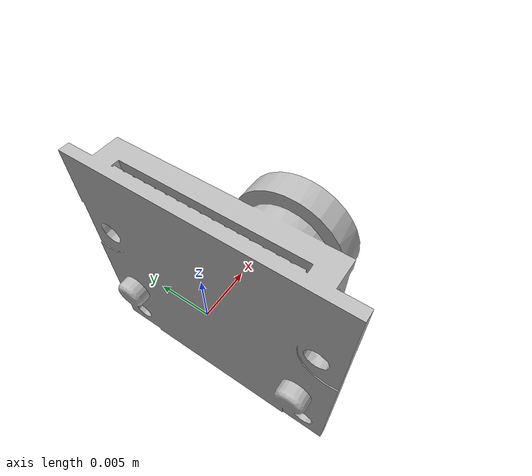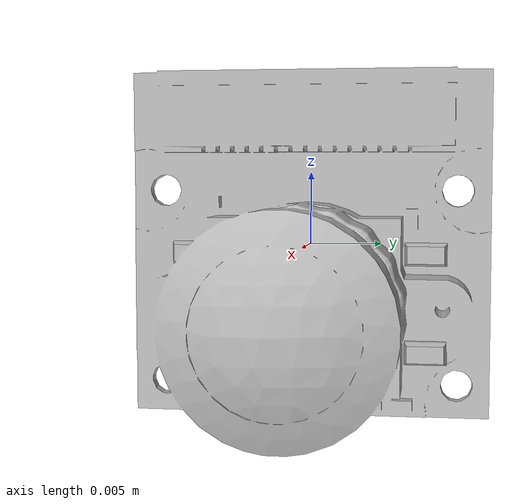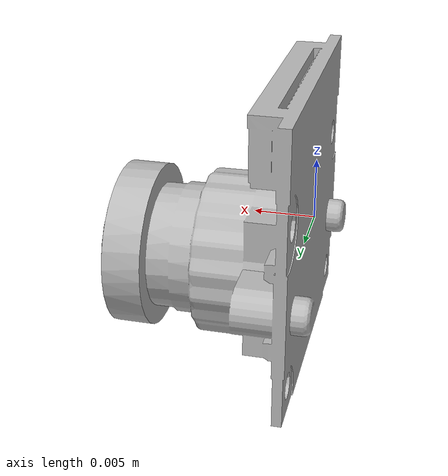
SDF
<?xml version="1.0" encoding="UTF-8"?>
<sdf version="1.9">
  <model name="rpi_camera">
    <self_collide>false</self_collide>
    <static>false</static>
    <link name="rpi_camera_link">
      <inertial>
        <mass>0.01</mass>
        <inertia>
          <ixx>0.000001</ixx>
          <iyy>0.000001</iyy>
          <izz>0.000001</izz>
          <ixy>0</ixy>
          <ixz>0</ixz>
          <iyz>0</iyz>
        </inertia>
      </inertial>
      <visual name="rpi_camera_visual">
        <!-- The OBJ mesh lens imports along local +Y; rotate the mesh so the model link +X is the optical direction. -->
        <pose>0 0 0 0 0 -1.5707963</pose>
        <geometry>
          <mesh>
            <scale>1 1 1</scale>
            <uri>model://rpi_camera/meshes/rpi_camera.obj</uri>
          </mesh>
        </geometry>
      </visual>
      <sensor name="imager" type="camera">
        <!-- Gazebo camera sensors look along local +X, matching this model link's optical direction. -->
        <!-- The lens mesh reaches 17.654 mm along +X.  Keep the optical
             centre ahead of it so a wide-angle sensor cannot see its own
             lens barrel. -->
        <pose>0.02 0 0 0 0 0</pose>
        <camera>
          <horizontal_fov>1.74</horizontal_fov>
          <image>
            <width>1280</width>
            <height>960</height>
          </image>
          <clip>
            <!-- The camera sits about 47 mm above the floor while landed. Keep
                 the near plane below that so the takeoff marker is visible. -->
            <near>0.03</near>
            <!-- 50 m is plenty for the indoor/маркерная SITL scene; a 3000 m
                 far plane only wastes depth precision and culling work. -->
            <far>50</far>
          </clip>
        </camera>
        <always_on>1</always_on>
        <update_rate>15</update_rate>
        <visualize>false</visualize>
      </sensor>
    </link>
  </model>
</sdf>
